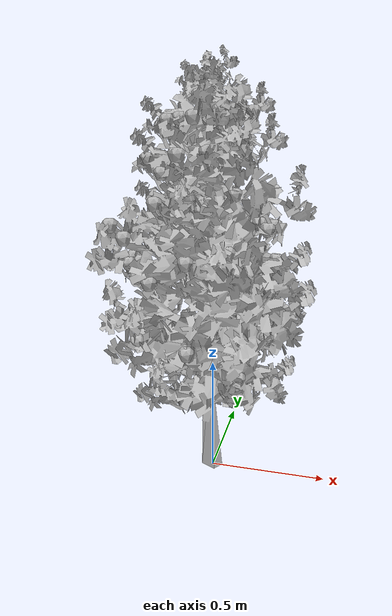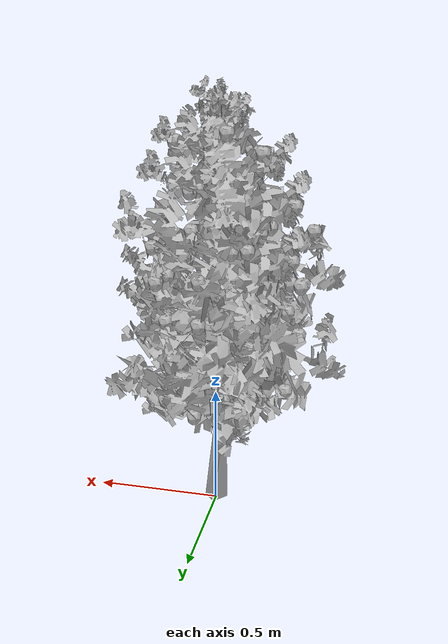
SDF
<?xml version="1.0"?>
<sdf version="1.6">
  <model name="apple_tree">
    <static>true</static>
    <link name="tree">
      <collision name="trunk_collision">
        <pose>0 0 0.591237 0 0 0</pose>
        <geometry>
          <cylinder>
            <radius>0.197079</radius>
            <length>1.182473</length>
          </cylinder>
        </geometry>
      </collision>
      <visual name="tree_visual">
        <geometry>
          <mesh>
            <uri>model://apple_tree/meshes/apple_tree.obj</uri>
            <scale>0.788316 0.788316 0.788316</scale>
          </mesh>
        </geometry>
      </visual>
      <visual name="apples_visual">
        <geometry>
          <mesh>
            <uri>model://apple_tree/meshes/apple_tree_apples.obj</uri>
            <scale>0.788316 0.788316 0.788316</scale>
          </mesh>
        </geometry>
      </visual>
    </link>
  </model>
</sdf>
